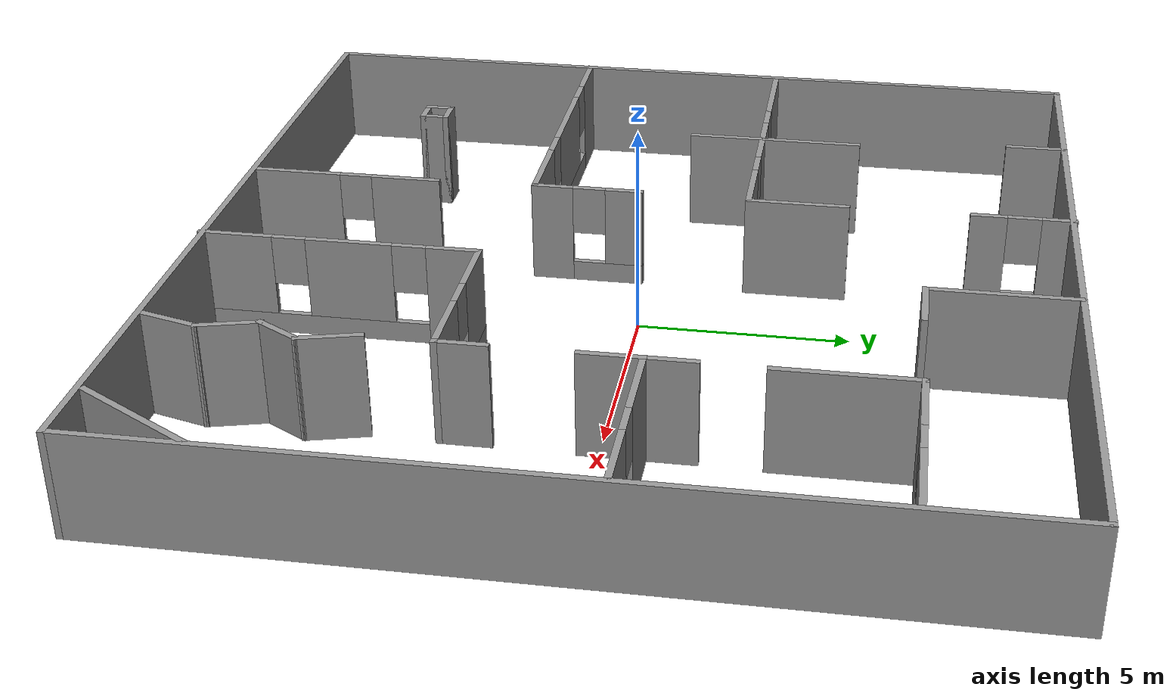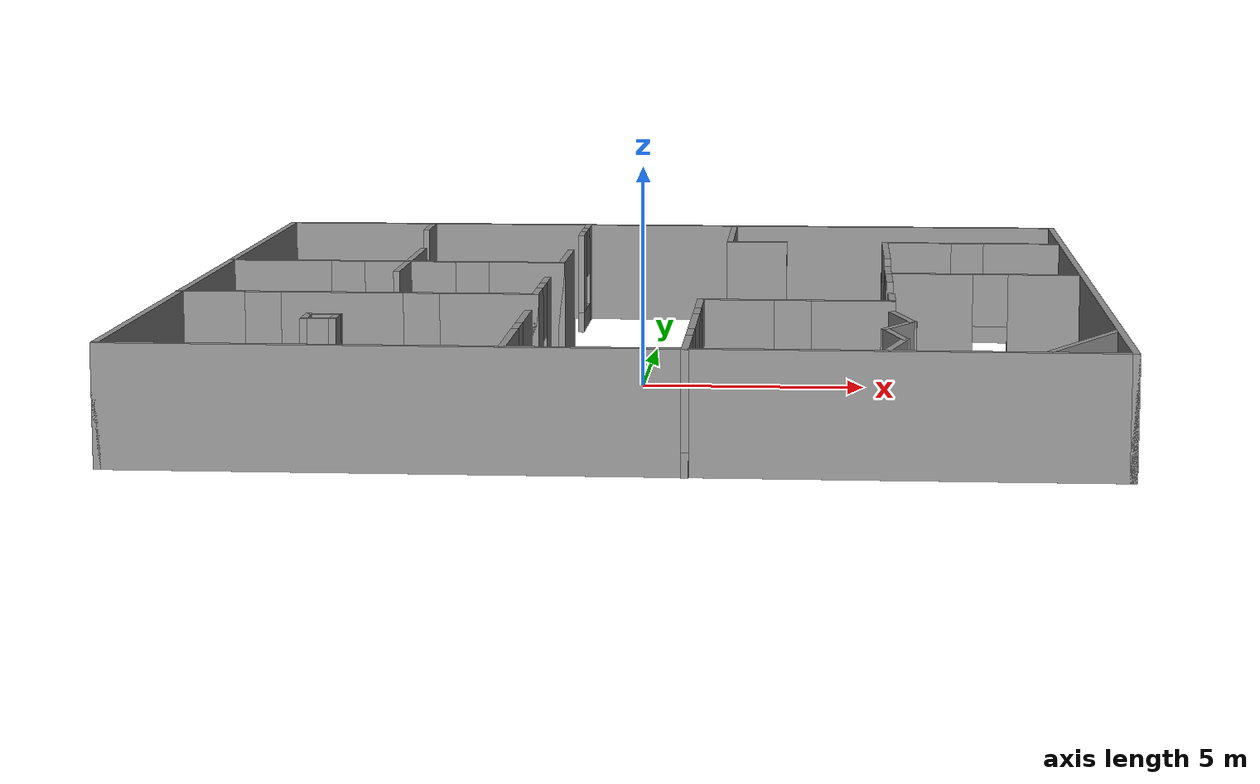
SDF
<?xml version='1.0'?>
<sdf version='1.7'>
  <model name='small_world'>
    <pose>-0.011773 -0.005599 0 0 -0 0</pose>
    <link name='Wall_0'>
      <collision name='Wall_0_Collision'>
        <geometry>
          <box>
            <size>20.15 0.15 2.5</size>
          </box>
        </geometry>
        <pose>0 0 1.25 0 -0 0</pose>
      </collision>
      <visual name='Wall_0_Visual'>
        <pose>0 0 1.25 0 -0 0</pose>
        <geometry>
          <box>
            <size>20.15 0.15 2.5</size>
          </box>
        </geometry>
        <material>
          <script>
            <uri>file://media/materials/scripts/gazebo.material</uri>
            <name>Gazebo/Grey</name>
          </script>
          <ambient>1 1 1 1</ambient>
        </material>
        <meta>
          <layer>0</layer>
        </meta>
      </visual>
      <pose>-9.98823 0.005599 0 0 -0 1.5708</pose>
    </link>
    <link name='Wall_15'>
      <pose>-6.01526 2.35904 0 0 -0 0</pose>
      <visual name='Wall_15_Visual_0'>
        <pose>-2.78466 0 1.25 0 -0 0</pose>
        <geometry>
          <box>
            <size>2.43069 0.15 2.5</size>
          </box>
        </geometry>
        <material>
          <script>
            <uri>file://media/materials/scripts/gazebo.material</uri>
            <name>Gazebo/Grey</name>
          </script>
          <ambient>1 1 1 1</ambient>
        </material>
        <meta>
          <layer>0</layer>
        </meta>
      </visual>
      <collision name='Wall_15_Collision_0'>
        <geometry>
          <box>
            <size>2.43069 0.15 2.5</size>
          </box>
        </geometry>
        <pose>-2.78466 0 1.25 0 -0 0</pose>
      </collision>
      <visual name='Wall_15_Visual_1'>
        <pose>1.21534 0 0.25 0 -0 0</pose>
        <geometry>
          <box>
            <size>5.56931 0.15 0.5</size>
          </box>
        </geometry>
        <material>
          <script>
            <uri>file://media/materials/scripts/gazebo.material</uri>
            <name>Gazebo/Grey</name>
          </script>
          <ambient>1 1 1 1</ambient>
        </material>
        <meta>
          <layer>0</layer>
        </meta>
      </visual>
      <collision name='Wall_15_Collision_1'>
        <geometry>
          <box>
            <size>5.56931 0.15 0.5</size>
          </box>
        </geometry>
        <pose>1.21534 0 0.25 0 -0 0</pose>
      </collision>
      <visual name='Wall_15_Visual_2'>
        <pose>0.314312 0 1.5 0 -0 0</pose>
        <geometry>
          <box>
            <size>2.16725 0.15 2</size>
          </box>
        </geometry>
        <material>
          <script>
            <uri>file://media/materials/scripts/gazebo.material</uri>
            <name>Gazebo/Grey</name>
          </script>
          <ambient>1 1 1 1</ambient>
        </material>
        <meta>
          <layer>0</layer>
        </meta>
      </visual>
      <collision name='Wall_15_Collision_2'>
        <geometry>
          <box>
            <size>2.16725 0.15 2</size>
          </box>
        </geometry>
        <pose>0.314312 0 1.5 0 -0 0</pose>
      </collision>
      <visual name='Wall_15_Visual_3'>
        <pose>3.09897 0 1.5 0 -0 0</pose>
        <geometry>
          <box>
            <size>1.80206 0.15 2</size>
          </box>
        </geometry>
        <material>
          <script>
            <uri>file://media/materials/scripts/gazebo.material</uri>
            <name>Gazebo/Grey</name>
          </script>
          <ambient>1 1 1 1</ambient>
        </material>
        <meta>
          <layer>0</layer>
        </meta>
      </visual>
      <collision name='Wall_15_Collision_3'>
        <geometry>
          <box>
            <size>1.80206 0.15 2</size>
          </box>
        </geometry>
        <pose>3.09897 0 1.5 0 -0 0</pose>
      </collision>
      <visual name='Wall_15_Visual_4'>
        <pose>-1.16931 0 1.9 0 -0 0</pose>
        <geometry>
          <box>
            <size>0.8 0.15 1.2</size>
          </box>
        </geometry>
        <material>
          <script>
            <uri>file://media/materials/scripts/gazebo.material</uri>
            <name>Gazebo/Grey</name>
          </script>
          <ambient>1 1 1 1</ambient>
        </material>
        <meta>
          <layer>0</layer>
        </meta>
      </visual>
      <collision name='Wall_15_Collision_4'>
        <geometry>
          <box>
            <size>0.8 0.15 1.2</size>
          </box>
        </geometry>
        <pose>-1.16931 0 1.9 0 -0 0</pose>
      </collision>
      <visual name='Wall_15_Visual_5'>
        <pose>1.79794 0 1.9 0 -0 0</pose>
        <geometry>
          <box>
            <size>0.8 0.15 1.2</size>
          </box>
        </geometry>
        <material>
          <script>
            <uri>file://media/materials/scripts/gazebo.material</uri>
            <name>Gazebo/Grey</name>
          </script>
          <ambient>1 1 1 1</ambient>
        </material>
        <meta>
          <layer>0</layer>
        </meta>
      </visual>
      <collision name='Wall_15_Collision_5'>
        <geometry>
          <box>
            <size>0.8 0.15 1.2</size>
          </box>
        </geometry>
        <pose>1.79794 0 1.9 0 -0 0</pose>
      </collision>
    </link>
    <link name='Wall_2'>
      <collision name='Wall_2_Collision'>
        <geometry>
          <box>
            <size>20.15 0.15 2.5</size>
          </box>
        </geometry>
        <pose>0 0 1.25 0 -0 0</pose>
      </collision>
      <visual name='Wall_2_Visual'>
        <pose>0 0 1.25 0 -0 0</pose>
        <geometry>
          <box>
            <size>20.15 0.15 2.5</size>
          </box>
        </geometry>
        <material>
          <script>
            <uri>file://media/materials/scripts/gazebo.material</uri>
            <name>Gazebo/Grey</name>
          </script>
          <ambient>1 1 1 1</ambient>
        </material>
        <meta>
          <layer>0</layer>
        </meta>
      </visual>
      <pose>0.011773 -9.9944 0 0 -0 0</pose>
    </link>
    <link name='Wall_23'>
      <collision name='Wall_23_Collision'>
        <geometry>
          <box>
            <size>2.5 0.15 2.5</size>
          </box>
        </geometry>
        <pose>0 0 1.25 0 -0 0</pose>
      </collision>
      <visual name='Wall_23_Visual'>
        <pose>0 0 1.25 0 -0 0</pose>
        <geometry>
          <box>
            <size>2.5 0.15 2.5</size>
          </box>
        </geometry>
        <material>
          <script>
            <uri>file://media/materials/scripts/gazebo.material</uri>
            <name>Gazebo/Grey</name>
          </script>
          <ambient>1 1 1 1</ambient>
        </material>
        <meta>
          <layer>0</layer>
        </meta>
      </visual>
      <pose>-2.09026 3.53404 0 0 -0 1.5708</pose>
    </link>
    <link name='Wall_27'>
      <pose>-2.10973 8.86774 0 0 -0 -1.5708</pose>
      <visual name='Wall_27_Visual_0'>
        <pose>-0.836679 0 1.25 0 -0 0</pose>
        <geometry>
          <box>
            <size>0.826642 0.15 2.5</size>
          </box>
        </geometry>
        <material>
          <script>
            <uri>file://media/materials/scripts/gazebo.material</uri>
            <name>Gazebo/Grey</name>
          </script>
          <ambient>1 1 1 1</ambient>
        </material>
        <meta>
          <layer>0</layer>
        </meta>
      </visual>
      <collision name='Wall_27_Collision_0'>
        <geometry>
          <box>
            <size>0.826642 0.15 2.5</size>
          </box>
        </geometry>
        <pose>-0.836679 0 1.25 0 -0 0</pose>
      </collision>
      <visual name='Wall_27_Visual_1'>
        <pose>0.413321 0 0.25 0 -0 0</pose>
        <geometry>
          <box>
            <size>1.67336 0.15 0.5</size>
          </box>
        </geometry>
        <material>
          <script>
            <uri>file://media/materials/scripts/gazebo.material</uri>
            <name>Gazebo/Grey</name>
          </script>
          <ambient>1 1 1 1</ambient>
        </material>
        <meta>
          <layer>0</layer>
        </meta>
      </visual>
      <collision name='Wall_27_Collision_1'>
        <geometry>
          <box>
            <size>1.67336 0.15 0.5</size>
          </box>
        </geometry>
        <pose>0.413321 0 0.25 0 -0 0</pose>
      </collision>
      <visual name='Wall_27_Visual_2'>
        <pose>0.813321 0 1.5 0 -0 0</pose>
        <geometry>
          <box>
            <size>0.873358 0.15 2</size>
          </box>
        </geometry>
        <material>
          <script>
            <uri>file://media/materials/scripts/gazebo.material</uri>
            <name>Gazebo/Grey</name>
          </script>
          <ambient>1 1 1 1</ambient>
        </material>
        <meta>
          <layer>0</layer>
        </meta>
      </visual>
      <collision name='Wall_27_Collision_2'>
        <geometry>
          <box>
            <size>0.873358 0.15 2</size>
          </box>
        </geometry>
        <pose>0.813321 0 1.5 0 -0 0</pose>
      </collision>
      <visual name='Wall_27_Visual_3'>
        <pose>-0.023358 0 1.9 0 -0 0</pose>
        <geometry>
          <box>
            <size>0.8 0.15 1.2</size>
          </box>
        </geometry>
        <material>
          <script>
            <uri>file://media/materials/scripts/gazebo.material</uri>
            <name>Gazebo/Grey</name>
          </script>
          <ambient>1 1 1 1</ambient>
        </material>
        <meta>
          <layer>0</layer>
        </meta>
      </visual>
      <collision name='Wall_27_Collision_3'>
        <geometry>
          <box>
            <size>0.8 0.15 1.2</size>
          </box>
        </geometry>
        <pose>-0.023358 0 1.9 0 -0 0</pose>
      </collision>
    </link>
    <link name='Wall_29'>
      <collision name='Wall_29_Collision'>
        <geometry>
          <box>
            <size>1.5 0.15 2.5</size>
          </box>
        </geometry>
        <pose>0 0 1.25 0 -0 0</pose>
      </collision>
      <visual name='Wall_29_Visual'>
        <pose>0 0 1.25 0 -0 0</pose>
        <geometry>
          <box>
            <size>1.5 0.15 2.5</size>
          </box>
        </geometry>
        <material>
          <script>
            <uri>file://media/materials/scripts/gazebo.material</uri>
            <name>Gazebo/Grey</name>
          </script>
          <ambient>1 1 1 1</ambient>
        </material>
        <meta>
          <layer>0</layer>
        </meta>
      </visual>
      <pose>-6.23628 9.30174 0 0 -0 -1.5708</pose>
    </link>
    <link name='Wall_31'>
      <collision name='Wall_31_Collision'>
        <geometry>
          <box>
            <size>2.5 0.15 2.5</size>
          </box>
        </geometry>
        <pose>0 0 1.25 0 -0 0</pose>
      </collision>
      <visual name='Wall_31_Visual'>
        <pose>0 0 1.25 0 -0 0</pose>
        <geometry>
          <box>
            <size>2.5 0.15 2.5</size>
          </box>
        </geometry>
        <material>
          <script>
            <uri>file://media/materials/scripts/gazebo.material</uri>
            <name>Gazebo/Grey</name>
          </script>
          <ambient>1 1 1 1</ambient>
        </material>
        <meta>
          <layer>0</layer>
        </meta>
      </visual>
      <pose>-5.74683 3.61125 0 0 -0 1.5708</pose>
    </link>
    <link name='Wall_33'>
      <pose>-6.08677 -2.88589 0 0 -0 0</pose>
      <visual name='Wall_33_Visual_0'>
        <pose>-3.23107 0 1.25 0 -0 0</pose>
        <geometry>
          <box>
            <size>1.53787 0.15 2.5</size>
          </box>
        </geometry>
        <material>
          <script>
            <uri>file://media/materials/scripts/gazebo.material</uri>
            <name>Gazebo/Grey</name>
          </script>
          <ambient>1 1 1 1</ambient>
        </material>
        <meta>
          <layer>0</layer>
        </meta>
      </visual>
      <collision name='Wall_33_Collision_0'>
        <geometry>
          <box>
            <size>1.53787 0.15 2.5</size>
          </box>
        </geometry>
        <pose>-3.23107 0 1.25 0 -0 0</pose>
      </collision>
      <visual name='Wall_33_Visual_1'>
        <pose>0.768933 0 0.25 0 -0 0</pose>
        <geometry>
          <box>
            <size>6.46213 0.15 0.5</size>
          </box>
        </geometry>
        <material>
          <script>
            <uri>file://media/materials/scripts/gazebo.material</uri>
            <name>Gazebo/Grey</name>
          </script>
          <ambient>1 1 1 1</ambient>
        </material>
        <meta>
          <layer>0</layer>
        </meta>
      </visual>
      <collision name='Wall_33_Collision_1'>
        <geometry>
          <box>
            <size>6.46213 0.15 0.5</size>
          </box>
        </geometry>
        <pose>0.768933 0 0.25 0 -0 0</pose>
      </collision>
      <visual name='Wall_33_Visual_2'>
        <pose>-0.314134 0 1.5 0 -0 0</pose>
        <geometry>
          <box>
            <size>2.696 0.15 2</size>
          </box>
        </geometry>
        <material>
          <script>
            <uri>file://media/materials/scripts/gazebo.material</uri>
            <name>Gazebo/Grey</name>
          </script>
          <ambient>1 1 1 1</ambient>
        </material>
        <meta>
          <layer>0</layer>
        </meta>
      </visual>
      <collision name='Wall_33_Collision_2'>
        <geometry>
          <box>
            <size>2.696 0.15 2</size>
          </box>
        </geometry>
        <pose>-0.314134 0 1.5 0 -0 0</pose>
      </collision>
      <visual name='Wall_33_Visual_3'>
        <pose>2.91693 0 1.5 0 -0 0</pose>
        <geometry>
          <box>
            <size>2.16613 0.15 2</size>
          </box>
        </geometry>
        <material>
          <script>
            <uri>file://media/materials/scripts/gazebo.material</uri>
            <name>Gazebo/Grey</name>
          </script>
          <ambient>1 1 1 1</ambient>
        </material>
        <meta>
          <layer>0</layer>
        </meta>
      </visual>
      <collision name='Wall_33_Collision_3'>
        <geometry>
          <box>
            <size>2.16613 0.15 2</size>
          </box>
        </geometry>
        <pose>2.91693 0 1.5 0 -0 0</pose>
      </collision>
      <visual name='Wall_33_Visual_4'>
        <pose>-2.06213 0 1.9 0 -0 0</pose>
        <geometry>
          <box>
            <size>0.8 0.15 1.2</size>
          </box>
        </geometry>
        <material>
          <script>
            <uri>file://media/materials/scripts/gazebo.material</uri>
            <name>Gazebo/Grey</name>
          </script>
          <ambient>1 1 1 1</ambient>
        </material>
        <meta>
          <layer>0</layer>
        </meta>
      </visual>
      <collision name='Wall_33_Collision_4'>
        <geometry>
          <box>
            <size>0.8 0.15 1.2</size>
          </box>
        </geometry>
        <pose>-2.06213 0 1.9 0 -0 0</pose>
      </collision>
      <visual name='Wall_33_Visual_5'>
        <pose>1.43387 0 1.9 0 -0 0</pose>
        <geometry>
          <box>
            <size>0.8 0.15 1.2</size>
          </box>
        </geometry>
        <material>
          <script>
            <uri>file://media/materials/scripts/gazebo.material</uri>
            <name>Gazebo/Grey</name>
          </script>
          <ambient>1 1 1 1</ambient>
        </material>
        <meta>
          <layer>0</layer>
        </meta>
      </visual>
      <collision name='Wall_33_Collision_5'>
        <geometry>
          <box>
            <size>0.8 0.15 1.2</size>
          </box>
        </geometry>
        <pose>1.43387 0 1.9 0 -0 0</pose>
      </collision>
    </link>
    <link name='Wall_34'>
      <pose>-2.16177 -1.58589 0 0 -0 1.5708</pose>
      <visual name='Wall_34_Visual_0'>
        <pose>-0.864515 0 1.25 0 -0 0</pose>
        <geometry>
          <box>
            <size>1.02097 0.15 2.5</size>
          </box>
        </geometry>
        <material>
          <script>
            <uri>file://media/materials/scripts/gazebo.material</uri>
            <name>Gazebo/Grey</name>
          </script>
          <ambient>1 1 1 1</ambient>
        </material>
        <meta>
          <layer>0</layer>
        </meta>
      </visual>
      <collision name='Wall_34_Collision_0'>
        <geometry>
          <box>
            <size>1.02097 0.15 2.5</size>
          </box>
        </geometry>
        <pose>-0.864515 0 1.25 0 -0 0</pose>
      </collision>
      <visual name='Wall_34_Visual_1'>
        <pose>0.510485 0 0.25 0 -0 0</pose>
        <geometry>
          <box>
            <size>1.72903 0.15 0.5</size>
          </box>
        </geometry>
        <material>
          <script>
            <uri>file://media/materials/scripts/gazebo.material</uri>
            <name>Gazebo/Grey</name>
          </script>
          <ambient>1 1 1 1</ambient>
        </material>
        <meta>
          <layer>0</layer>
        </meta>
      </visual>
      <collision name='Wall_34_Collision_1'>
        <geometry>
          <box>
            <size>1.72903 0.15 0.5</size>
          </box>
        </geometry>
        <pose>0.510485 0 0.25 0 -0 0</pose>
      </collision>
      <visual name='Wall_34_Visual_2'>
        <pose>0.910485 0 1.5 0 -0 0</pose>
        <geometry>
          <box>
            <size>0.92903 0.15 2</size>
          </box>
        </geometry>
        <material>
          <script>
            <uri>file://media/materials/scripts/gazebo.material</uri>
            <name>Gazebo/Grey</name>
          </script>
          <ambient>1 1 1 1</ambient>
        </material>
        <meta>
          <layer>0</layer>
        </meta>
      </visual>
      <collision name='Wall_34_Collision_2'>
        <geometry>
          <box>
            <size>0.92903 0.15 2</size>
          </box>
        </geometry>
        <pose>0.910485 0 1.5 0 -0 0</pose>
      </collision>
      <visual name='Wall_34_Visual_3'>
        <pose>0.04597 0 1.9 0 -0 0</pose>
        <geometry>
          <box>
            <size>0.8 0.15 1.2</size>
          </box>
        </geometry>
        <material>
          <script>
            <uri>file://media/materials/scripts/gazebo.material</uri>
            <name>Gazebo/Grey</name>
          </script>
          <ambient>1 1 1 1</ambient>
        </material>
        <meta>
          <layer>0</layer>
        </meta>
      </visual>
      <collision name='Wall_34_Collision_3'>
        <geometry>
          <box>
            <size>0.8 0.15 1.2</size>
          </box>
        </geometry>
        <pose>0.04597 0 1.9 0 -0 0</pose>
      </collision>
    </link>
    <link name='Wall_37'>
      <pose>-2.05329 -7.61819 0 0 -0 1.5708</pose>
      <visual name='Wall_37_Visual_0'>
        <pose>-1.26069 0 1.25 0 -0 0</pose>
        <geometry>
          <box>
            <size>2.22862 0.15 2.5</size>
          </box>
        </geometry>
        <material>
          <script>
            <uri>file://media/materials/scripts/gazebo.material</uri>
            <name>Gazebo/Grey</name>
          </script>
          <ambient>1 1 1 1</ambient>
        </material>
        <meta>
          <layer>0</layer>
        </meta>
      </visual>
      <collision name='Wall_37_Collision_0'>
        <geometry>
          <box>
            <size>2.22862 0.15 2.5</size>
          </box>
        </geometry>
        <pose>-1.26069 0 1.25 0 -0 0</pose>
      </collision>
      <visual name='Wall_37_Visual_1'>
        <pose>1.11431 0 0.25 0 -0 0</pose>
        <geometry>
          <box>
            <size>2.52138 0.15 0.5</size>
          </box>
        </geometry>
        <material>
          <script>
            <uri>file://media/materials/scripts/gazebo.material</uri>
            <name>Gazebo/Grey</name>
          </script>
          <ambient>1 1 1 1</ambient>
        </material>
        <meta>
          <layer>0</layer>
        </meta>
      </visual>
      <collision name='Wall_37_Collision_1'>
        <geometry>
          <box>
            <size>2.52138 0.15 0.5</size>
          </box>
        </geometry>
        <pose>1.11431 0 0.25 0 -0 0</pose>
      </collision>
      <visual name='Wall_37_Visual_2'>
        <pose>1.51431 0 1.5 0 -0 0</pose>
        <geometry>
          <box>
            <size>1.72138 0.15 2</size>
          </box>
        </geometry>
        <material>
          <script>
            <uri>file://media/materials/scripts/gazebo.material</uri>
            <name>Gazebo/Grey</name>
          </script>
          <ambient>1 1 1 1</ambient>
        </material>
        <meta>
          <layer>0</layer>
        </meta>
      </visual>
      <collision name='Wall_37_Collision_2'>
        <geometry>
          <box>
            <size>1.72138 0.15 2</size>
          </box>
        </geometry>
        <pose>1.51431 0 1.5 0 -0 0</pose>
      </collision>
      <visual name='Wall_37_Visual_3'>
        <pose>0.253619 0 1.9 0 -0 0</pose>
        <geometry>
          <box>
            <size>0.8 0.15 1.2</size>
          </box>
        </geometry>
        <material>
          <script>
            <uri>file://media/materials/scripts/gazebo.material</uri>
            <name>Gazebo/Grey</name>
          </script>
          <ambient>1 1 1 1</ambient>
        </material>
        <meta>
          <layer>0</layer>
        </meta>
      </visual>
      <collision name='Wall_37_Collision_3'>
        <geometry>
          <box>
            <size>0.8 0.15 1.2</size>
          </box>
        </geometry>
        <pose>0.253619 0 1.9 0 -0 0</pose>
      </collision>
    </link>
    <link name='Wall_4'>
      <collision name='Wall_4_Collision'>
        <geometry>
          <box>
            <size>20.15 0.15 2.5</size>
          </box>
        </geometry>
        <pose>0 0 1.25 0 -0 0</pose>
      </collision>
      <visual name='Wall_4_Visual'>
        <pose>0 0 1.25 0 -0 0</pose>
        <geometry>
          <box>
            <size>20.15 0.15 2.5</size>
          </box>
        </geometry>
        <material>
          <script>
            <uri>file://media/materials/scripts/gazebo.material</uri>
            <name>Gazebo/Grey</name>
          </script>
          <ambient>1 1 1 1</ambient>
        </material>
        <meta>
          <layer>0</layer>
        </meta>
      </visual>
      <pose>0.011773 10.0056 0 0 -0 0</pose>
    </link>
    <link name='Wall_40'>
      <collision name='Wall_40_Collision'>
        <geometry>
          <box>
            <size>2 0.15 2.5</size>
          </box>
        </geometry>
        <pose>0 0 1.25 0 -0 0</pose>
      </collision>
      <visual name='Wall_40_Visual'>
        <pose>0 0 1.25 0 -0 0</pose>
        <geometry>
          <box>
            <size>2 0.15 2.5</size>
          </box>
        </geometry>
        <material>
          <script>
            <uri>file://media/materials/scripts/gazebo.material</uri>
            <name>Gazebo/Grey</name>
          </script>
          <ambient>1 1 1 1</ambient>
        </material>
        <meta>
          <layer>0</layer>
        </meta>
      </visual>
      <pose>-5.74683 1.51125 0 0 -0 -1.5708</pose>
    </link>
    <link name='Wall_46'>
      <collision name='Wall_46_Collision'>
        <geometry>
          <box>
            <size>3.5 0.15 2.5</size>
          </box>
        </geometry>
        <pose>0 0 1.25 0 -0 0</pose>
      </collision>
      <visual name='Wall_46_Visual'>
        <pose>0 0 1.25 0 -0 0</pose>
        <geometry>
          <box>
            <size>3.5 0.15 2.5</size>
          </box>
        </geometry>
        <material>
          <script>
            <uri>file://media/materials/scripts/gazebo.material</uri>
            <name>Gazebo/Grey</name>
          </script>
          <ambient>1 1 1 1</ambient>
        </material>
        <meta>
          <layer>0</layer>
        </meta>
      </visual>
      <pose>1.74213 8.29456 0 0 -0 -1.5708</pose>
    </link>
    <link name='Wall_48'>
      <collision name='Wall_48_Collision'>
        <geometry>
          <box>
            <size>1.5 0.15 2.5</size>
          </box>
        </geometry>
        <pose>0 0 1.25 0 -0 0</pose>
      </collision>
      <visual name='Wall_48_Visual'>
        <pose>0 0 1.25 0 -0 0</pose>
        <geometry>
          <box>
            <size>1.5 0.15 2.5</size>
          </box>
        </geometry>
        <material>
          <script>
            <uri>file://media/materials/scripts/gazebo.material</uri>
            <name>Gazebo/Grey</name>
          </script>
          <ambient>1 1 1 1</ambient>
        </material>
        <meta>
          <layer>0</layer>
        </meta>
      </visual>
      <pose>2.41713 6.61956 0 0 -0 0</pose>
    </link>
    <link name='Wall_50'>
      <pose>7.78713 6.66956 0 0 -0 0</pose>
      <visual name='Wall_50_Visual_0'>
        <pose>-1.38813 0 1.25 0 -0 0</pose>
        <geometry>
          <box>
            <size>1.72373 0.15 2.5</size>
          </box>
        </geometry>
        <material>
          <script>
            <uri>file://media/materials/scripts/gazebo.material</uri>
            <name>Gazebo/Grey</name>
          </script>
          <ambient>1 1 1 1</ambient>
        </material>
        <meta>
          <layer>0</layer>
        </meta>
      </visual>
      <collision name='Wall_50_Collision_0'>
        <geometry>
          <box>
            <size>1.72373 0.15 2.5</size>
          </box>
        </geometry>
        <pose>-1.38813 0 1.25 0 -0 0</pose>
      </collision>
      <visual name='Wall_50_Visual_1'>
        <pose>0.861866 0 0.25 0 -0 0</pose>
        <geometry>
          <box>
            <size>2.77627 0.15 0.5</size>
          </box>
        </geometry>
        <material>
          <script>
            <uri>file://media/materials/scripts/gazebo.material</uri>
            <name>Gazebo/Grey</name>
          </script>
          <ambient>1 1 1 1</ambient>
        </material>
        <meta>
          <layer>0</layer>
        </meta>
      </visual>
      <collision name='Wall_50_Collision_1'>
        <geometry>
          <box>
            <size>2.77627 0.15 0.5</size>
          </box>
        </geometry>
        <pose>0.861866 0 0.25 0 -0 0</pose>
      </collision>
      <visual name='Wall_50_Visual_2'>
        <pose>1.26187 0 1.5 0 -0 0</pose>
        <geometry>
          <box>
            <size>1.97627 0.15 2</size>
          </box>
        </geometry>
        <material>
          <script>
            <uri>file://media/materials/scripts/gazebo.material</uri>
            <name>Gazebo/Grey</name>
          </script>
          <ambient>1 1 1 1</ambient>
        </material>
        <meta>
          <layer>0</layer>
        </meta>
      </visual>
      <collision name='Wall_50_Collision_2'>
        <geometry>
          <box>
            <size>1.97627 0.15 2</size>
          </box>
        </geometry>
        <pose>1.26187 0 1.5 0 -0 0</pose>
      </collision>
      <visual name='Wall_50_Visual_3'>
        <pose>-0.126269 0 1.9 0 -0 0</pose>
        <geometry>
          <box>
            <size>0.8 0.15 1.2</size>
          </box>
        </geometry>
        <material>
          <script>
            <uri>file://media/materials/scripts/gazebo.material</uri>
            <name>Gazebo/Grey</name>
          </script>
          <ambient>1 1 1 1</ambient>
        </material>
        <meta>
          <layer>0</layer>
        </meta>
      </visual>
      <collision name='Wall_50_Collision_3'>
        <geometry>
          <box>
            <size>0.8 0.15 1.2</size>
          </box>
        </geometry>
        <pose>-0.126269 0 1.9 0 -0 0</pose>
      </collision>
    </link>
    <link name='Wall_52'>
      <collision name='Wall_52_Collision'>
        <geometry>
          <box>
            <size>3.25 0.15 2.5</size>
          </box>
        </geometry>
        <pose>0 0 1.25 0 -0 0</pose>
      </collision>
      <visual name='Wall_52_Visual'>
        <pose>0 0 1.25 0 -0 0</pose>
        <geometry>
          <box>
            <size>3.25 0.15 2.5</size>
          </box>
        </geometry>
        <material>
          <script>
            <uri>file://media/materials/scripts/gazebo.material</uri>
            <name>Gazebo/Grey</name>
          </script>
          <ambient>1 1 1 1</ambient>
        </material>
        <meta>
          <layer>0</layer>
        </meta>
      </visual>
      <pose>5.61213 5.11956 0 0 -0 -1.5708</pose>
    </link>
    <link name='Wall_57'>
      <collision name='Wall_57_Collision'>
        <geometry>
          <box>
            <size>1.25 0.15 2.5</size>
          </box>
        </geometry>
        <pose>0 0 1.25 0 -0 0</pose>
      </collision>
      <visual name='Wall_57_Visual'>
        <pose>0 0 1.25 0 -0 0</pose>
        <geometry>
          <box>
            <size>1.25 0.15 2.5</size>
          </box>
        </geometry>
        <material>
          <script>
            <uri>file://media/materials/scripts/gazebo.material</uri>
            <name>Gazebo/Grey</name>
          </script>
          <ambient>1 1 1 1</ambient>
        </material>
        <meta>
          <layer>0</layer>
        </meta>
      </visual>
      <pose>5.57736 1.50488 0 0 -0 -1.5708</pose>
    </link>
    <link name='Wall_58'>
      <pose>7.75236 0.954877 0 0 -0 0</pose>
      <visual name='Wall_58_Visual_0'>
        <pose>-1.24832 0 1.25 0 -0 0</pose>
        <geometry>
          <box>
            <size>2.00337 0.15 2.5</size>
          </box>
        </geometry>
        <material>
          <script>
            <uri>file://media/materials/scripts/gazebo.material</uri>
            <name>Gazebo/Grey</name>
          </script>
          <ambient>1 1 1 1</ambient>
        </material>
        <meta>
          <layer>0</layer>
        </meta>
      </visual>
      <collision name='Wall_58_Collision_0'>
        <geometry>
          <box>
            <size>2.00337 0.15 2.5</size>
          </box>
        </geometry>
        <pose>-1.24832 0 1.25 0 -0 0</pose>
      </collision>
      <visual name='Wall_58_Visual_1'>
        <pose>1.00168 0 0.25 0 -0 0</pose>
        <geometry>
          <box>
            <size>2.49663 0.15 0.5</size>
          </box>
        </geometry>
        <material>
          <script>
            <uri>file://media/materials/scripts/gazebo.material</uri>
            <name>Gazebo/Grey</name>
          </script>
          <ambient>1 1 1 1</ambient>
        </material>
        <meta>
          <layer>0</layer>
        </meta>
      </visual>
      <collision name='Wall_58_Collision_1'>
        <geometry>
          <box>
            <size>2.49663 0.15 0.5</size>
          </box>
        </geometry>
        <pose>1.00168 0 0.25 0 -0 0</pose>
      </collision>
      <visual name='Wall_58_Visual_2'>
        <pose>1.40168 0 1.5 0 -0 0</pose>
        <geometry>
          <box>
            <size>1.69663 0.15 2</size>
          </box>
        </geometry>
        <material>
          <script>
            <uri>file://media/materials/scripts/gazebo.material</uri>
            <name>Gazebo/Grey</name>
          </script>
          <ambient>1 1 1 1</ambient>
        </material>
        <meta>
          <layer>0</layer>
        </meta>
      </visual>
      <collision name='Wall_58_Collision_2'>
        <geometry>
          <box>
            <size>1.69663 0.15 2</size>
          </box>
        </geometry>
        <pose>1.40168 0 1.5 0 -0 0</pose>
      </collision>
      <visual name='Wall_58_Visual_3'>
        <pose>0.153368 0 1.9 0 -0 0</pose>
        <geometry>
          <box>
            <size>0.8 0.15 1.2</size>
          </box>
        </geometry>
        <material>
          <script>
            <uri>file://media/materials/scripts/gazebo.material</uri>
            <name>Gazebo/Grey</name>
          </script>
          <ambient>1 1 1 1</ambient>
        </material>
        <meta>
          <layer>0</layer>
        </meta>
      </visual>
      <collision name='Wall_58_Collision_3'>
        <geometry>
          <box>
            <size>0.8 0.15 1.2</size>
          </box>
        </geometry>
        <pose>0.153368 0 1.9 0 -0 0</pose>
      </collision>
    </link>
    <link name='Wall_6'>
      <collision name='Wall_6_Collision'>
        <geometry>
          <box>
            <size>20.15 0.15 2.5</size>
          </box>
        </geometry>
        <pose>0 0 1.25 0 -0 0</pose>
      </collision>
      <visual name='Wall_6_Visual'>
        <pose>0 0 1.25 0 -0 0</pose>
        <geometry>
          <box>
            <size>20.15 0.15 2.5</size>
          </box>
        </geometry>
        <material>
          <script>
            <uri>file://media/materials/scripts/gazebo.material</uri>
            <name>Gazebo/Grey</name>
          </script>
          <ambient>1 1 1 1</ambient>
        </material>
        <meta>
          <layer>0</layer>
        </meta>
      </visual>
      <pose>10.0118 0.005599 0 0 -0 -1.5708</pose>
    </link>
    <link name='Wall_62'>
      <collision name='Wall_62_Collision'>
        <geometry>
          <box>
            <size>1.5 0.15 2.5</size>
          </box>
        </geometry>
        <pose>0 0 1.25 0 -0 0</pose>
      </collision>
      <visual name='Wall_62_Visual'>
        <pose>0 0 1.25 0 -0 0</pose>
        <geometry>
          <box>
            <size>1.5 0.15 2.5</size>
          </box>
        </geometry>
        <material>
          <script>
            <uri>file://media/materials/scripts/gazebo.material</uri>
            <name>Gazebo/Grey</name>
          </script>
          <ambient>1 1 1 1</ambient>
        </material>
        <meta>
          <layer>0</layer>
        </meta>
      </visual>
      <pose>5.57736 0.279877 0 0 -0 -1.5708</pose>
    </link>
    <link name='Wall_66'>
      <collision name='Wall_66_Collision'>
        <geometry>
          <box>
            <size>1.25 0.15 2.5</size>
          </box>
        </geometry>
        <pose>0 0 1.25 0 -0 0</pose>
      </collision>
      <visual name='Wall_66_Visual'>
        <pose>0 0 1.25 0 -0 0</pose>
        <geometry>
          <box>
            <size>1.25 0.15 2.5</size>
          </box>
        </geometry>
        <material>
          <script>
            <uri>file://media/materials/scripts/gazebo.material</uri>
            <name>Gazebo/Grey</name>
          </script>
          <ambient>1 1 1 1</ambient>
        </material>
        <meta>
          <layer>0</layer>
        </meta>
      </visual>
      <pose>5.56946 -2.89274 0 0 -0 -1.5708</pose>
    </link>
    <link name='Wall_67'>
      <pose>3.51946 -3.44274 0 0 -0 3.14159</pose>
      <visual name='Wall_67_Visual_0'>
        <pose>-1.22432 0 1.25 0 -0 0</pose>
        <geometry>
          <box>
            <size>1.80137 0.15 2.5</size>
          </box>
        </geometry>
        <material>
          <script>
            <uri>file://media/materials/scripts/gazebo.material</uri>
            <name>Gazebo/Grey</name>
          </script>
          <ambient>1 1 1 1</ambient>
        </material>
        <meta>
          <layer>0</layer>
        </meta>
      </visual>
      <collision name='Wall_67_Collision_0'>
        <geometry>
          <box>
            <size>1.80137 0.15 2.5</size>
          </box>
        </geometry>
        <pose>-1.22432 0 1.25 0 -0 0</pose>
      </collision>
      <visual name='Wall_67_Visual_1'>
        <pose>0.900683 0 0.25 0 -0 0</pose>
        <geometry>
          <box>
            <size>2.44863 0.15 0.5</size>
          </box>
        </geometry>
        <material>
          <script>
            <uri>file://media/materials/scripts/gazebo.material</uri>
            <name>Gazebo/Grey</name>
          </script>
          <ambient>1 1 1 1</ambient>
        </material>
        <meta>
          <layer>0</layer>
        </meta>
      </visual>
      <collision name='Wall_67_Collision_1'>
        <geometry>
          <box>
            <size>2.44863 0.15 0.5</size>
          </box>
        </geometry>
        <pose>0.900683 0 0.25 0 -0 0</pose>
      </collision>
      <visual name='Wall_67_Visual_2'>
        <pose>1.30068 0 1.5 0 -0 0</pose>
        <geometry>
          <box>
            <size>1.64863 0.15 2</size>
          </box>
        </geometry>
        <material>
          <script>
            <uri>file://media/materials/scripts/gazebo.material</uri>
            <name>Gazebo/Grey</name>
          </script>
          <ambient>1 1 1 1</ambient>
        </material>
        <meta>
          <layer>0</layer>
        </meta>
      </visual>
      <collision name='Wall_67_Collision_2'>
        <geometry>
          <box>
            <size>1.64863 0.15 2</size>
          </box>
        </geometry>
        <pose>1.30068 0 1.5 0 -0 0</pose>
      </collision>
      <visual name='Wall_67_Visual_3'>
        <pose>0.076366 0 1.9 0 -0 0</pose>
        <geometry>
          <box>
            <size>0.8 0.15 1.2</size>
          </box>
        </geometry>
        <material>
          <script>
            <uri>file://media/materials/scripts/gazebo.material</uri>
            <name>Gazebo/Grey</name>
          </script>
          <ambient>1 1 1 1</ambient>
        </material>
        <meta>
          <layer>0</layer>
        </meta>
      </visual>
      <collision name='Wall_67_Collision_3'>
        <geometry>
          <box>
            <size>0.8 0.15 1.2</size>
          </box>
        </geometry>
        <pose>0.076366 0 1.9 0 -0 0</pose>
      </collision>
    </link>
    <link name='Wall_70'>
      <pose>1.46946 -6.74274 0 0 -0 -1.5708</pose>
      <visual name='Wall_70_Visual_0'>
        <pose>-2.71974 0 1.25 0 -0 0</pose>
        <geometry>
          <box>
            <size>1.31051 0.15 2.5</size>
          </box>
        </geometry>
        <material>
          <script>
            <uri>file://media/materials/scripts/gazebo.material</uri>
            <name>Gazebo/Grey</name>
          </script>
          <ambient>1 1 1 1</ambient>
        </material>
        <meta>
          <layer>0</layer>
        </meta>
      </visual>
      <collision name='Wall_70_Collision_0'>
        <geometry>
          <box>
            <size>1.31051 0.15 2.5</size>
          </box>
        </geometry>
        <pose>-2.71974 0 1.25 0 -0 0</pose>
      </collision>
      <visual name='Wall_70_Visual_1'>
        <pose>0.655256 0 0.25 0 -0 0</pose>
        <geometry>
          <box>
            <size>5.43949 0.15 0.5</size>
          </box>
        </geometry>
        <material>
          <script>
            <uri>file://media/materials/scripts/gazebo.material</uri>
            <name>Gazebo/Grey</name>
          </script>
          <ambient>1 1 1 1</ambient>
        </material>
        <meta>
          <layer>0</layer>
        </meta>
      </visual>
      <collision name='Wall_70_Collision_1'>
        <geometry>
          <box>
            <size>5.43949 0.15 0.5</size>
          </box>
        </geometry>
        <pose>0.655256 0 0.25 0 -0 0</pose>
      </collision>
      <visual name='Wall_70_Visual_2'>
        <pose>-0.238489 0 1.5 0 -0 0</pose>
        <geometry>
          <box>
            <size>2.052 0.15 2</size>
          </box>
        </geometry>
        <material>
          <script>
            <uri>file://media/materials/scripts/gazebo.material</uri>
            <name>Gazebo/Grey</name>
          </script>
          <ambient>1 1 1 1</ambient>
        </material>
        <meta>
          <layer>0</layer>
        </meta>
      </visual>
      <collision name='Wall_70_Collision_2'>
        <geometry>
          <box>
            <size>2.052 0.15 2</size>
          </box>
        </geometry>
        <pose>-0.238489 0 1.5 0 -0 0</pose>
      </collision>
      <visual name='Wall_70_Visual_3'>
        <pose>2.48126 0 1.5 0 -0 0</pose>
        <geometry>
          <box>
            <size>1.78749 0.15 2</size>
          </box>
        </geometry>
        <material>
          <script>
            <uri>file://media/materials/scripts/gazebo.material</uri>
            <name>Gazebo/Grey</name>
          </script>
          <ambient>1 1 1 1</ambient>
        </material>
        <meta>
          <layer>0</layer>
        </meta>
      </visual>
      <collision name='Wall_70_Collision_3'>
        <geometry>
          <box>
            <size>1.78749 0.15 2</size>
          </box>
        </geometry>
        <pose>2.48126 0 1.5 0 -0 0</pose>
      </collision>
      <visual name='Wall_70_Visual_4'>
        <pose>-1.66449 0 1.9 0 -0 0</pose>
        <geometry>
          <box>
            <size>0.8 0.15 1.2</size>
          </box>
        </geometry>
        <material>
          <script>
            <uri>file://media/materials/scripts/gazebo.material</uri>
            <name>Gazebo/Grey</name>
          </script>
          <ambient>1 1 1 1</ambient>
        </material>
        <meta>
          <layer>0</layer>
        </meta>
      </visual>
      <collision name='Wall_70_Collision_4'>
        <geometry>
          <box>
            <size>0.8 0.15 1.2</size>
          </box>
        </geometry>
        <pose>-1.66449 0 1.9 0 -0 0</pose>
      </collision>
      <visual name='Wall_70_Visual_5'>
        <pose>1.18751 0 1.9 0 -0 0</pose>
        <geometry>
          <box>
            <size>0.8 0.15 1.2</size>
          </box>
        </geometry>
        <material>
          <script>
            <uri>file://media/materials/scripts/gazebo.material</uri>
            <name>Gazebo/Grey</name>
          </script>
          <ambient>1 1 1 1</ambient>
        </material>
        <meta>
          <layer>0</layer>
        </meta>
      </visual>
      <collision name='Wall_70_Collision_5'>
        <geometry>
          <box>
            <size>0.8 0.15 1.2</size>
          </box>
        </geometry>
        <pose>1.18751 0 1.9 0 -0 0</pose>
      </collision>
    </link>
    <link name='Wall_74'>
      <collision name='Wall_74_Collision'>
        <geometry>
          <box>
            <size>1.5 0.15 2.5</size>
          </box>
        </geometry>
        <pose>0 0 1.25 0 -0 0</pose>
      </collision>
      <visual name='Wall_74_Visual'>
        <pose>0 0 1.25 0 -0 0</pose>
        <geometry>
          <box>
            <size>1.5 0.15 2.5</size>
          </box>
        </geometry>
        <material>
          <script>
            <uri>file://media/materials/scripts/gazebo.material</uri>
            <name>Gazebo/Grey</name>
          </script>
          <ambient>1 1 1 1</ambient>
        </material>
        <meta>
          <layer>0</layer>
        </meta>
      </visual>
      <pose>5.72289 -5.66775 0 0 -0 -1.309</pose>
    </link>
    <link name='Wall_75'>
      <collision name='Wall_75_Collision'>
        <geometry>
          <box>
            <size>1.25 0.15 2.5</size>
          </box>
        </geometry>
        <pose>0 0 1.25 0 -0 0</pose>
      </collision>
      <visual name='Wall_75_Visual'>
        <pose>0 0 1.25 0 -0 0</pose>
        <geometry>
          <box>
            <size>1.25 0.15 2.5</size>
          </box>
        </geometry>
        <material>
          <script>
            <uri>file://media/materials/scripts/gazebo.material</uri>
            <name>Gazebo/Grey</name>
          </script>
          <ambient>1 1 1 1</ambient>
        </material>
        <meta>
          <layer>0</layer>
        </meta>
      </visual>
      <pose>5.6226 -6.79607 0 0 -0 -2.0944</pose>
    </link>
    <link name='Wall_76'>
      <collision name='Wall_76_Collision'>
        <geometry>
          <box>
            <size>1.5 0.15 2.5</size>
          </box>
        </geometry>
        <pose>0 0 1.25 0 -0 0</pose>
      </collision>
      <visual name='Wall_76_Visual'>
        <pose>0 0 1.25 0 -0 0</pose>
        <geometry>
          <box>
            <size>1.5 0.15 2.5</size>
          </box>
        </geometry>
        <material>
          <script>
            <uri>file://media/materials/scripts/gazebo.material</uri>
            <name>Gazebo/Grey</name>
          </script>
          <ambient>1 1 1 1</ambient>
        </material>
        <meta>
          <layer>0</layer>
        </meta>
      </visual>
      <pose>5.5223 -7.92438 0 0 -0 -1.309</pose>
    </link>
    <link name='Wall_78'>
      <collision name='Wall_78_Collision'>
        <geometry>
          <box>
            <size>1.5 0.15 2.5</size>
          </box>
        </geometry>
        <pose>0 0 1.25 0 -0 0</pose>
      </collision>
      <visual name='Wall_78_Visual'>
        <pose>0 0 1.25 0 -0 0</pose>
        <geometry>
          <box>
            <size>1.5 0.15 2.5</size>
          </box>
        </geometry>
        <material>
          <script>
            <uri>file://media/materials/scripts/gazebo.material</uri>
            <name>Gazebo/Grey</name>
          </script>
          <ambient>1 1 1 1</ambient>
        </material>
        <meta>
          <layer>0</layer>
        </meta>
      </visual>
      <pose>5.5223 -9.22838 0 0 -0 -1.8326</pose>
    </link>
    <link name='Wall_80'>
      <collision name='Wall_80_Collision'>
        <geometry>
          <box>
            <size>0.75 0.15 2.5</size>
          </box>
        </geometry>
        <pose>0 0 1.25 0 -0 0</pose>
      </collision>
      <visual name='Wall_80_Visual'>
        <pose>0 0 1.25 0 -0 0</pose>
        <geometry>
          <box>
            <size>0.75 0.15 2.5</size>
          </box>
        </geometry>
        <material>
          <script>
            <uri>file://media/materials/scripts/gazebo.material</uri>
            <name>Gazebo/Grey</name>
          </script>
          <ambient>1 1 1 1</ambient>
        </material>
        <meta>
          <layer>0</layer>
        </meta>
      </visual>
      <pose>-6.53089 -6.36475 0 0 -0 -1.5708</pose>
    </link>
    <link name='Wall_81'>
      <collision name='Wall_81_Collision'>
        <geometry>
          <box>
            <size>0.75 0.15 2.5</size>
          </box>
        </geometry>
        <pose>0 0 1.25 0 -0 0</pose>
      </collision>
      <visual name='Wall_81_Visual'>
        <pose>0 0 1.25 0 -0 0</pose>
        <geometry>
          <box>
            <size>0.75 0.15 2.5</size>
          </box>
        </geometry>
        <material>
          <script>
            <uri>file://media/materials/scripts/gazebo.material</uri>
            <name>Gazebo/Grey</name>
          </script>
          <ambient>1 1 1 1</ambient>
        </material>
        <meta>
          <layer>0</layer>
        </meta>
      </visual>
      <pose>-6.23089 -6.66474 0 0 -0 0</pose>
    </link>
    <link name='Wall_82'>
      <collision name='Wall_82_Collision'>
        <geometry>
          <box>
            <size>0.75 0.15 2.5</size>
          </box>
        </geometry>
        <pose>0 0 1.25 0 -0 0</pose>
      </collision>
      <visual name='Wall_82_Visual'>
        <pose>0 0 1.25 0 -0 0</pose>
        <geometry>
          <box>
            <size>0.75 0.15 2.5</size>
          </box>
        </geometry>
        <material>
          <script>
            <uri>file://media/materials/scripts/gazebo.material</uri>
            <name>Gazebo/Grey</name>
          </script>
          <ambient>1 1 1 1</ambient>
        </material>
        <meta>
          <layer>0</layer>
        </meta>
      </visual>
      <pose>-5.93089 -6.36475 0 0 -0 1.5708</pose>
    </link>
    <link name='Wall_83'>
      <collision name='Wall_83_Collision'>
        <geometry>
          <box>
            <size>0.75 0.15 2.5</size>
          </box>
        </geometry>
        <pose>0 0 1.25 0 -0 0</pose>
      </collision>
      <visual name='Wall_83_Visual'>
        <pose>0 0 1.25 0 -0 0</pose>
        <geometry>
          <box>
            <size>0.75 0.15 2.5</size>
          </box>
        </geometry>
        <material>
          <script>
            <uri>file://media/materials/scripts/gazebo.material</uri>
            <name>Gazebo/Grey</name>
          </script>
          <ambient>1 1 1 1</ambient>
        </material>
        <meta>
          <layer>0</layer>
        </meta>
      </visual>
      <pose>-6.23089 -6.06475 0 0 -0 3.14159</pose>
    </link>
    <link name='Wall_85'>
      <collision name='Wall_85_Collision'>
        <geometry>
          <box>
            <size>3.25 0.15 2.5</size>
          </box>
        </geometry>
        <pose>0 0 1.25 0 -0 0</pose>
      </collision>
      <visual name='Wall_85_Visual'>
        <pose>0 0 1.25 0 -0 0</pose>
        <geometry>
          <box>
            <size>3.25 0.15 2.5</size>
          </box>
        </geometry>
        <material>
          <script>
            <uri>file://media/materials/scripts/gazebo.material</uri>
            <name>Gazebo/Grey</name>
          </script>
          <ambient>1 1 1 1</ambient>
        </material>
        <meta>
          <layer>0</layer>
        </meta>
      </visual>
      <pose>9.20811 -8.51108 0 0 -0 -2.0944</pose>
    </link>
    <static>1</static>
  </model>
</sdf>
